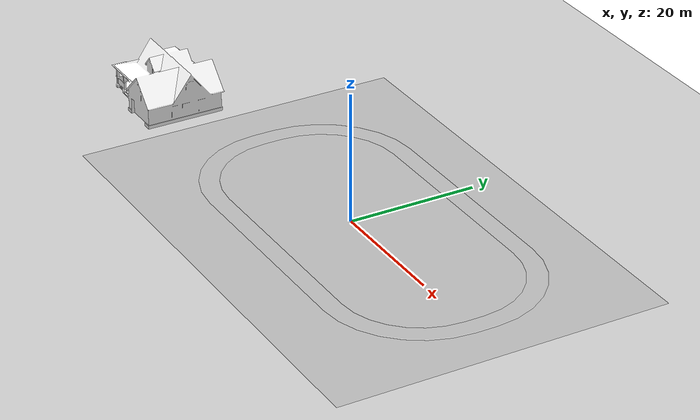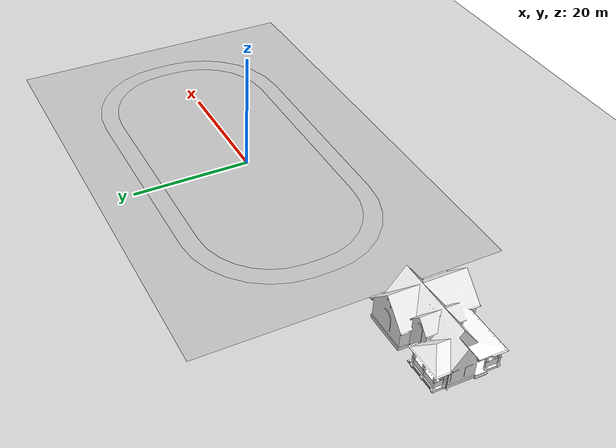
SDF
<sdf version="1.7">
 <world name="default">
  <light name="sun" type="directional">
   <pose>0 0 10 0 -0 0</pose>
   <diffuse>0.8 0.8 0.8 1</diffuse>
   <specular>0.2 0.2 0.2 1</specular>
   <attenuation>
    <range>1000</range>
    <constant>0.9</constant>
    <linear>0.01</linear>
    <quadratic>0.001</quadratic>
   </attenuation>
   <direction>-0.5 0.1 -0.9</direction>
   <spot><inner_angle>0</inner_angle><outer_angle>0</outer_angle><falloff>0</falloff></spot>
  </light>
  <model name="ground_plane">
   <static>1</static>
   <link name="link">
    <collision name="collision">
     <geometry><plane><normal>0 0 1</normal><size>100 100</size></plane></geometry>
     <surface><friction><ode><mu>100</mu><mu2>50</mu2></ode></friction></surface>
    </collision>
    <visual name="visual">
     <cast_shadows>0</cast_shadows>
     <geometry><plane><normal>0 0 1</normal><size>100 100</size></plane></geometry>
     <material>
      <script><uri>file://media/materials/scripts/gazebo.material</uri><name>Gazebo/Grey</name></script>
     </material>
    </visual>
   </link>
  </model>
  <gravity>0 0 -9.8</gravity>
  <magnetic_field>6e-06 2.3e-05 -4.2e-05</magnetic_field>
  <atmosphere type="adiabatic"/>
  <physics type="ode">
   <max_step_size>0.001</max_step_size>
   <real_time_factor>1</real_time_factor>
   <real_time_update_rate>1000</real_time_update_rate>
  </physics>
  <scene><ambient>0.4 0.4 0.4 1</ambient><background>0.7 0.7 0.7 1</background><shadows>1</shadows></scene>
  <spherical_coordinates>
   <surface_model>EARTH_WGS84</surface_model>
   <latitude_deg>0</latitude_deg>
   <longitude_deg>0</longitude_deg>
   <elevation>0</elevation>
   <heading_deg>0</heading_deg>
  </spherical_coordinates>
  <model name="my">
   <model name="my">
    <model name="House 1">
     <static>1</static>
     <link name="link">
      <collision name="collision">
       <geometry><mesh><uri>model://house_1/meshes/house_1.dae</uri><scale>1.5 1.5 1.5</scale></mesh></geometry>
      </collision>
      <visual name="visual">
       <geometry><mesh><uri>model://house_1/meshes/house_1.dae</uri><scale>1.5 1.5 1.5</scale></mesh></geometry>
       <material>
        <script>
         <uri>model://house_1/materials/scripts</uri>
         <uri>model://house_1/materials/textures</uri>
         <name>House_1/Diffuse</name>
        </script>
        <shader type="normal_map_tangent_space"><normal_map>House_1_Normal.png</normal_map></shader>
       </material>
      </visual>
     </link>
     <pose>-27.0418 -4.46703 -0.333333 0 -0 0</pose>
    </model>
    <model name="aws_Ground_01">
     <link name="body">
      <inertial>
       <mass>10000</mass>
       <inertia><ixx>0</ixx><ixy>0</ixy><ixz>0</ixz><iyy>0</iyy><iyz>0</iyz><izz>0</izz></inertia>
      </inertial>
      <visual name="visual">
       <geometry>
        <mesh>
         <uri>model://aws_robomaker_racetrack_Ground_01/meshes/aws_Ground_01_visual.DAE</uri>
         <scale>0.09 0.06 0.2</scale>
        </mesh>
       </geometry>
       <material><shader type="pixel"><normal_map>__default__</normal_map></shader></material>
       <meta><layer>0</layer></meta>
      </visual>
      <collision name="collision_0">
       <geometry>
        <mesh>
         <uri>model://aws_robomaker_racetrack_Ground_01/meshes/aws_Ground_01_collision.DAE</uri>
         <scale>0.2 0.2 0.2</scale>
        </mesh>
       </geometry>
       <surface>
        <friction>
         <ode><mu>1</mu><mu2>1</mu2><fdir1>0 0 0</fdir1><slip1>0</slip1><slip2>0</slip2></ode>
         <torsional>
          <coefficient>1</coefficient>
          <patch_radius>0</patch_radius>
          <surface_radius>0</surface_radius>
          <use_patch_radius>1</use_patch_radius>
          <ode><slip>0</slip></ode>
         </torsional>
        </friction>
        <bounce><restitution_coefficient>0</restitution_coefficient><threshold>1e+06</threshold></bounce>
        <contact>
         <collide_without_contact>0</collide_without_contact>
         <collide_without_contact_bitmask>1</collide_without_contact_bitmask>
         <collide_bitmask>65535</collide_bitmask>
         <ode>
          <soft_cfm>0</soft_cfm>
          <soft_erp>0.2</soft_erp>
          <kp>1e+13</kp>
          <kd>1</kd>
          <max_vel>0.01</max_vel>
          <min_depth>0</min_depth>
         </ode>
         <bullet>
          <split_impulse>1</split_impulse>
          <split_impulse_penetration_threshold>-0.01</split_impulse_penetration_threshold>
          <soft_cfm>0</soft_cfm>
          <soft_erp>0.2</soft_erp>
          <kp>1e+13</kp>
          <kd>1</kd>
         </bullet>
        </contact>
       </surface>
      </collision>
     </link>
     <static>1</static>
     <pose>21.5891 2.07704 0.166667 0 -0 0</pose>
    </model>
    <model name="aws_Track_05">
     <link name="body">
      <inertial>
       <mass>1000</mass>
       <inertia><ixx>1</ixx><ixy>0</ixy><ixz>0</ixz><iyy>1</iyy><iyz>0</iyz><izz>1</izz></inertia>
      </inertial>
      <visual name="visual">
       <geometry>
        <mesh><uri>model://aws_robomaker_racetrack_Track_05/meshes/aws_Track_05_visual.DAE</uri></mesh>
       </geometry>
       <material><shader type="pixel"><normal_map>__default__</normal_map></shader></material>
       <meta><layer>0</layer></meta>
      </visual>
      <collision name="collision_0">
       <geometry>
        <mesh>
         <uri>model://aws_robomaker_racetrack_Track_05/meshes/aws_Track_05_collision.DAE</uri>
         <scale>1 1 1</scale>
        </mesh>
       </geometry>
       <surface>
        <friction>
         <ode><mu>1</mu><mu2>1</mu2><fdir1>0 0 0</fdir1><slip1>0</slip1><slip2>0</slip2></ode>
         <torsional>
          <coefficient>1</coefficient>
          <patch_radius>0</patch_radius>
          <surface_radius>0</surface_radius>
          <use_patch_radius>1</use_patch_radius>
          <ode><slip>0</slip></ode>
         </torsional>
        </friction>
        <bounce><restitution_coefficient>0</restitution_coefficient><threshold>1e+06</threshold></bounce>
        <contact>
         <collide_without_contact>0</collide_without_contact>
         <collide_without_contact_bitmask>1</collide_without_contact_bitmask>
         <collide_bitmask>1</collide_bitmask>
         <ode>
          <soft_cfm>0</soft_cfm>
          <soft_erp>0.2</soft_erp>
          <kp>1e+13</kp>
          <kd>1</kd>
          <max_vel>0.01</max_vel>
          <min_depth>0</min_depth>
         </ode>
         <bullet>
          <split_impulse>1</split_impulse>
          <split_impulse_penetration_threshold>-0.01</split_impulse_penetration_threshold>
          <soft_cfm>0</soft_cfm>
          <soft_erp>0.2</soft_erp>
          <kp>1e+13</kp>
          <kd>1</kd>
         </bullet>
        </contact>
       </surface>
      </collision>
     </link>
     <static>1</static>
     <pose>26.0428 2.90868 0.166667 0 -0 0</pose>
    </model>
    <static>0</static>
    <pose>-3.5e-05 4e-06 0 0 -0 0</pose>
   </model>
   <static>0</static>
   <pose>-19.3776 -1.45774 0 0 -0 0</pose>
  </model>
 </world>
</sdf>
